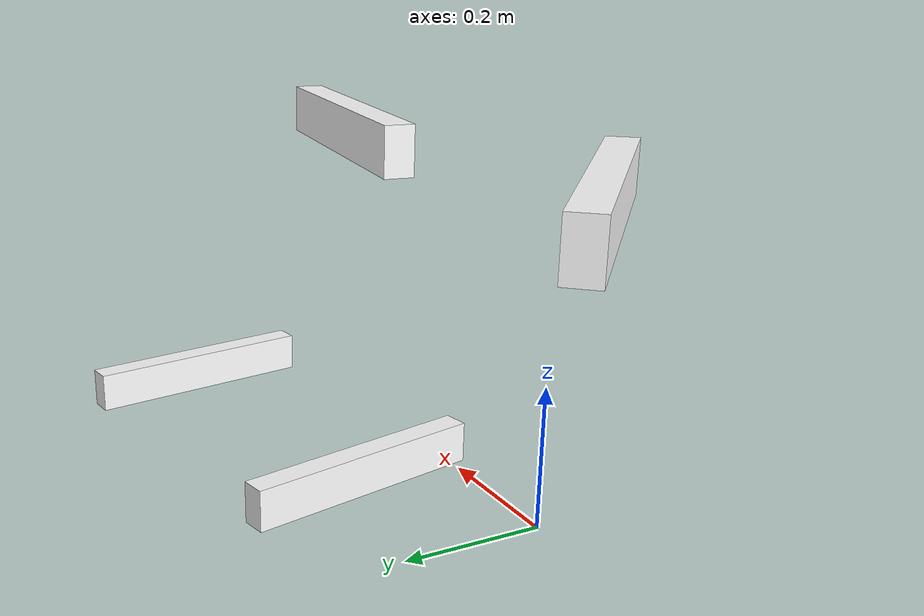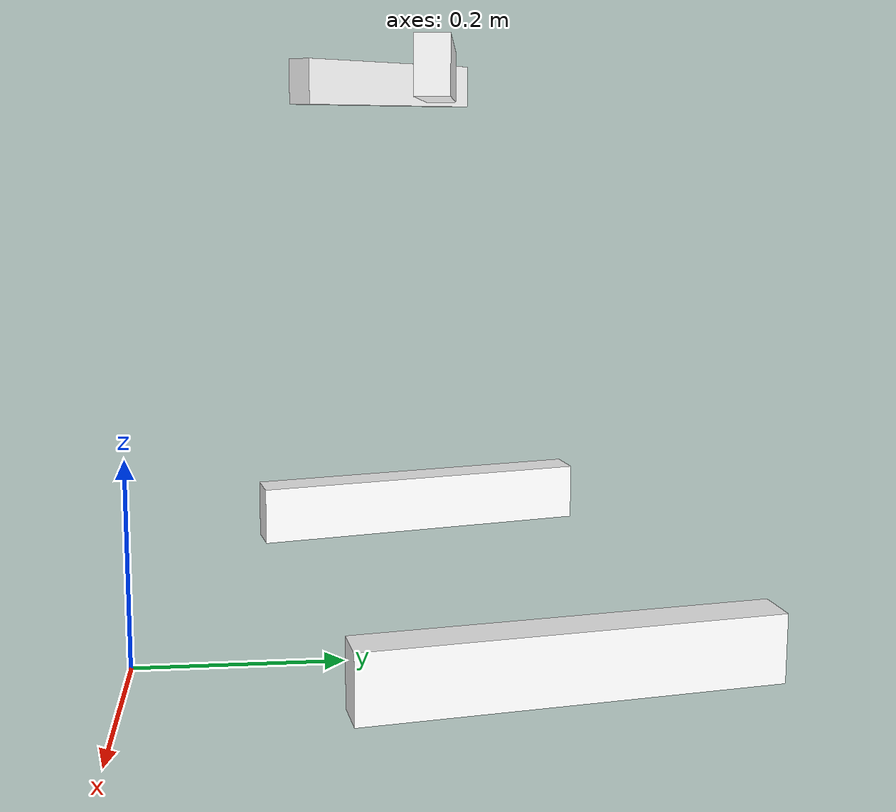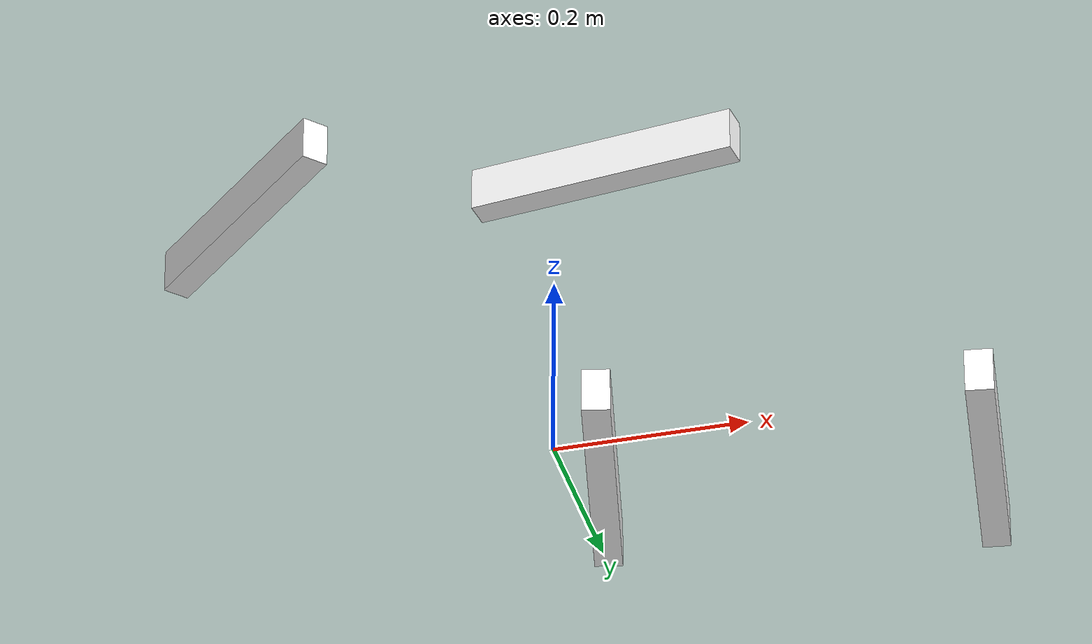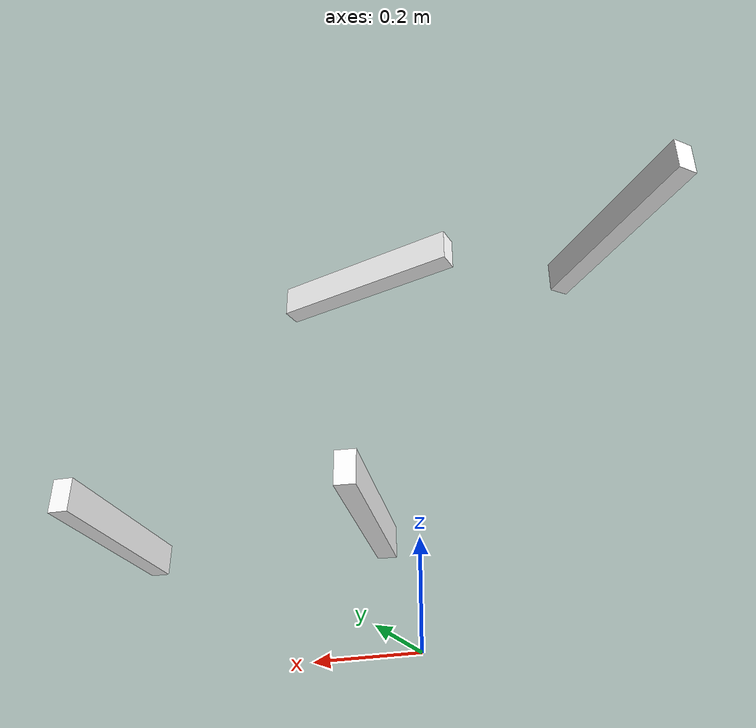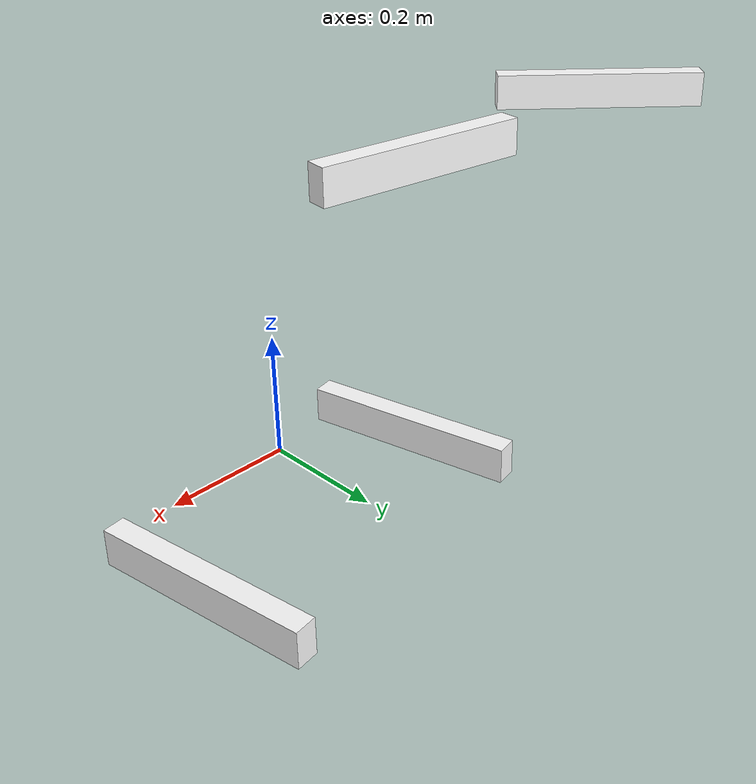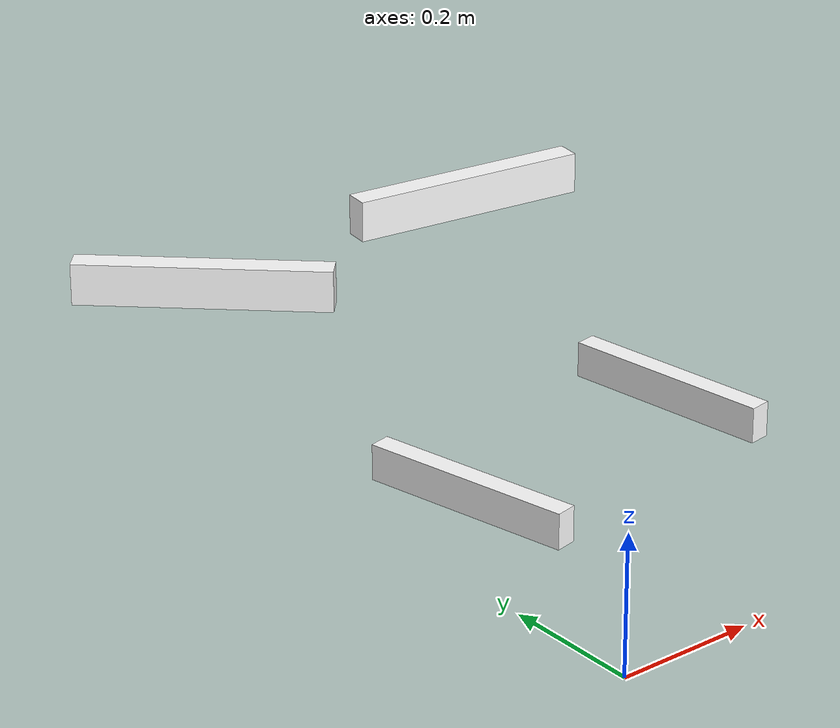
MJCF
<mujoco>
  <compiler angle="radian" />

  <visual>
    <headlight ambient="0.1 0.1 0.1" />
  </visual>

  <asset>
    <material name="white" rgba="1 1 1 1" />
    <material name="goal" rgba="0 0 0 0.3" />
  </asset>

  <option gravity="0 0 -9.8" />
  <worldbody>
    <body name="obj1" pos="0.3784299601268317 0.3355577734643331 0.15100000000000002" quat="0.9974815916084616 0.0 0.0 0.07092583733908385">
      <joint type="free" />
      <inertial pos="0 0 0" mass="1" diaginertia="0.01 0.01 0.01" />
      <geom type="box" size="0.015 0.15 0.025" material="white" />

    </body>

    <body name="obj2" pos="-0.4182196319831897 0.2698749362130717 0.551" quat="0.9176936021369153 0.0 0.0 0.39728887801821605">
      <joint type="free" />
      <inertial pos="0 0 0" mass="1" diaginertia="0.01 0.01 0.01" />
      <geom type="box" size="0.015 0.15 0.025" material="white" />

    </body>

    <body name="obj3" pos="-0.018837020517793977 0.2725861080589779 0.15100000000000002" quat="0.10121616381239286 -0.0 -0.0 -0.9948644571915829">
      <joint type="free" />
      <inertial pos="0 0 0" mass="1" diaginertia="0.01 0.01 0.01" />
      <geom type="box" size="0.015 0.15 0.025" material="white" />

    </body>

    <body name="obj4" pos="-0.018917691169670674 0.28892045412382034 0.551" quat="0.7544292005371731 0.0 0.0 0.6563814297928011">
      <joint type="free" />
      <inertial pos="0 0 0" mass="1" diaginertia="0.01 0.01 0.01" />
      <geom type="box" size="0.015 0.15 0.025" material="white" />

    </body>

  </worldbody>
</mujoco>
